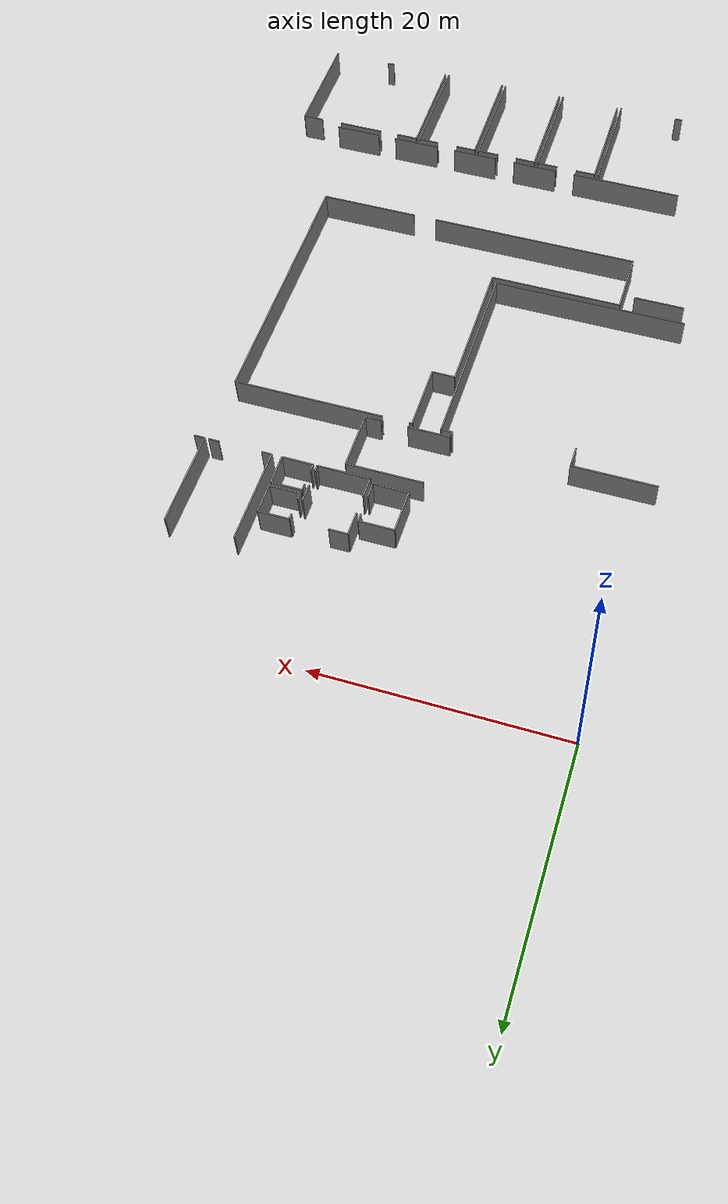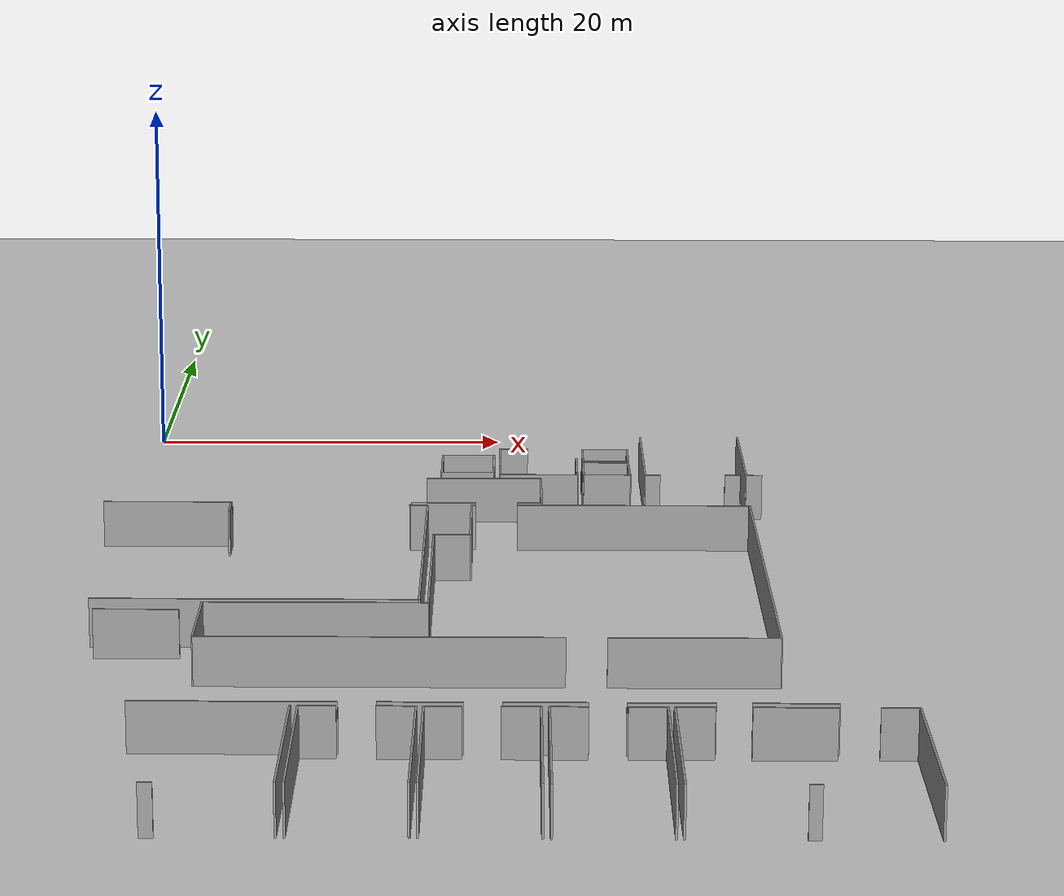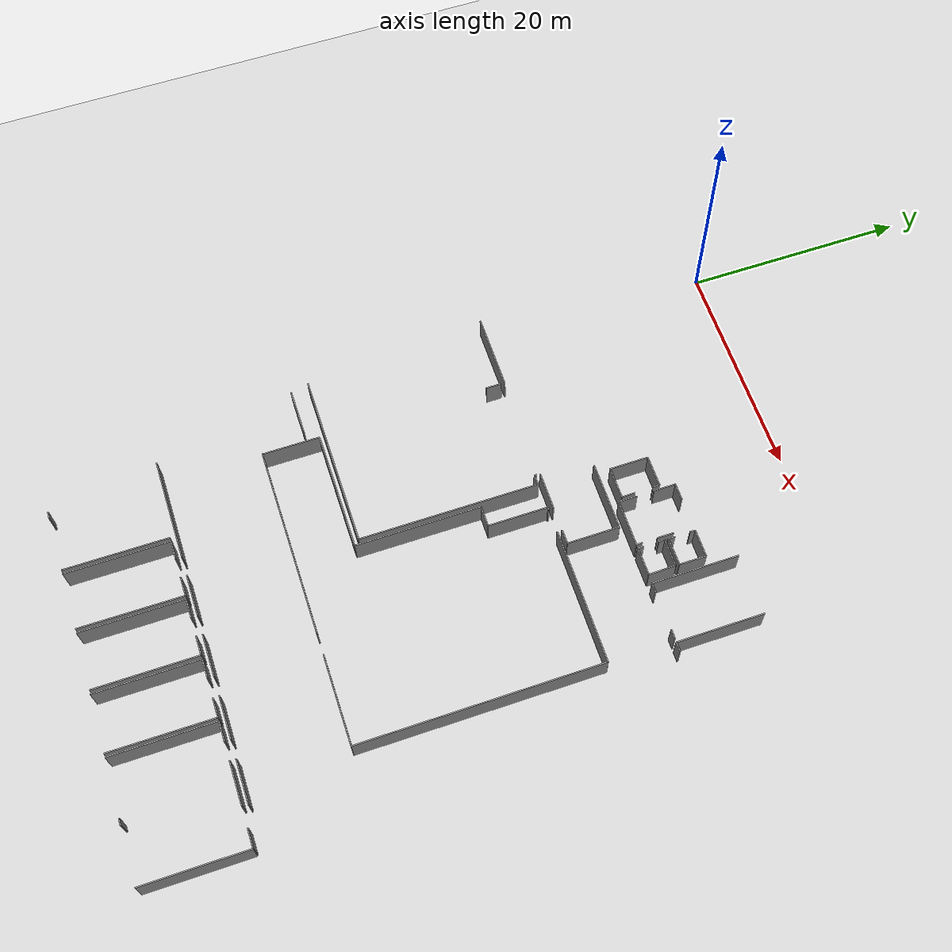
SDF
<sdf version="1.6">
 <world name="default">
  <model name="ground_plane">
   <static>1</static>
   <link name="link">
    <collision name="collision">
     <geometry><plane><normal>0 0 1</normal><size>100 100</size></plane></geometry>
     <surface><friction><ode><mu>100</mu><mu2>50</mu2></ode></friction></surface>
    </collision>
    <visual name="visual">
     <cast_shadows>0</cast_shadows>
     <geometry><plane><normal>0 0 1</normal><size>100 100</size></plane></geometry>
     <material>
      <script><uri>file://media/materials/scripts/gazebo.material</uri><name>Gazebo/Grey</name></script>
     </material>
    </visual>
   </link>
  </model>
  <model name="0510045905_A_40_1_103">
   <static>1</static>
   <link name="Wall_158">
    <collision name="Wall_158_Collision">
     <geometry><box><size>6.26891620083 0.1 2.5</size></box></geometry>
     <pose>3.13445810042 0 1.25 0 0 0</pose>
    </collision>
    <visual name="Wall_158_Visual">
     <pose>3.13445810042 0 1.25 0 0 0</pose>
     <geometry><box><size>6.26891620083 0.1 2.5</size></box></geometry>
     <material>
      <script><uri>file://media/materials/scripts/gazebo.material</uri><name>Gazebo/Grey</name></script>
      <ambient>1 1 1 1</ambient>
     </material>
    </visual>
    <pose>99.9729700577 -78.7939315876 0 0 0 0.0</pose>
   </link>
   <link name="Wall_159">
    <collision name="Wall_159_Collision">
     <geometry><box><size>4.72021471672 0.1 2.5</size></box></geometry>
     <pose>2.36010735836 0 1.25 0 0 0</pose>
    </collision>
    <visual name="Wall_159_Visual">
     <pose>2.36010735836 0 1.25 0 0 0</pose>
     <geometry><box><size>4.72021471672 0.1 2.5</size></box></geometry>
     <material>
      <script><uri>file://media/materials/scripts/gazebo.material</uri><name>Gazebo/Grey</name></script>
      <ambient>1 1 1 1</ambient>
     </material>
    </visual>
    <pose>106.241886259 -78.7939315876 0 0 0 -1.57079632679</pose>
   </link>
   <link name="Wall_160">
    <collision name="Wall_160_Collision">
     <geometry><box><size>1.30733552026 0.1 2.5</size></box></geometry>
     <pose>0.653667760131 0 1.25 0 0 0</pose>
    </collision>
    <visual name="Wall_160_Visual">
     <pose>0.653667760131 0 1.25 0 0 0</pose>
     <geometry><box><size>1.30733552026 0.1 2.5</size></box></geometry>
     <material>
      <script><uri>file://media/materials/scripts/gazebo.material</uri><name>Gazebo/Grey</name></script>
      <ambient>1 1 1 1</ambient>
     </material>
    </visual>
    <pose>106.241886259 -83.5141463043 0 0 0 3.14159265359</pose>
   </link>
   <link name="Wall_161">
    <collision name="Wall_161_Collision">
     <geometry><box><size>3.45221854914 0.1 2.5</size></box></geometry>
     <pose>1.72610927457 0 1.25 0 0 0</pose>
    </collision>
    <visual name="Wall_161_Visual">
     <pose>1.72610927457 0 1.25 0 0 0</pose>
     <geometry><box><size>3.45221854914 0.1 2.5</size></box></geometry>
     <material>
      <script><uri>file://media/materials/scripts/gazebo.material</uri><name>Gazebo/Grey</name></script>
      <ambient>1 1 1 1</ambient>
     </material>
    </visual>
    <pose>102.725455734 -83.5141463043 0 0 0 3.14159265359</pose>
   </link>
   <link name="Wall_162">
    <collision name="Wall_162_Collision">
     <geometry><box><size>6.92194945528 0.1 2.5</size></box></geometry>
     <pose>3.46097472764 0 1.25 0 0 0</pose>
    </collision>
    <visual name="Wall_162_Visual">
     <pose>3.46097472764 0 1.25 0 0 0</pose>
     <geometry><box><size>6.92194945528 0.1 2.5</size></box></geometry>
     <material>
      <script><uri>file://media/materials/scripts/gazebo.material</uri><name>Gazebo/Grey</name></script>
      <ambient>1 1 1 1</ambient>
     </material>
    </visual>
    <pose>89.6797649791 -83.5141463043 0 0 0 3.14159265359</pose>
   </link>
   <link name="Wall_252">
    <collision name="Wall_252_Collision">
     <geometry><box><size>4.29534970781 0.1 2.5</size></box></geometry>
     <pose>2.14767485391 0 1.25 0 0 0</pose>
    </collision>
    <visual name="Wall_252_Visual">
     <pose>2.14767485391 0 1.25 0 0 0</pose>
     <geometry><box><size>4.29534970781 0.1 2.5</size></box></geometry>
     <material>
      <script><uri>file://media/materials/scripts/gazebo.material</uri><name>Gazebo/Grey</name></script>
      <ambient>1 1 1 1</ambient>
     </material>
    </visual>
    <pose>108.283217959 -78.0013070817 0 0 0 3.14159265359</pose>
   </link>
   <link name="Wall_253">
    <collision name="Wall_253_Collision">
     <geometry><box><size>1.68321669004 0.1 2.5</size></box></geometry>
     <pose>0.841608345019 0 1.25 0 0 0</pose>
    </collision>
    <visual name="Wall_253_Visual">
     <pose>0.841608345019 0 1.25 0 0 0</pose>
     <geometry><box><size>1.68321669004 0.1 2.5</size></box></geometry>
     <material>
      <script><uri>file://media/materials/scripts/gazebo.material</uri><name>Gazebo/Grey</name></script>
      <ambient>1 1 1 1</ambient>
     </material>
    </visual>
    <pose>103.987868251 -78.0013070817 0 0 0 1.57079632679</pose>
   </link>
   <link name="Wall_254">
    <collision name="Wall_254_Collision">
     <geometry><box><size>1.97356649302 0.1 2.5</size></box></geometry>
     <pose>0.986783246512 0 1.25 0 0 0</pose>
    </collision>
    <visual name="Wall_254_Visual">
     <pose>0.986783246512 0 1.25 0 0 0</pose>
     <geometry><box><size>1.97356649302 0.1 2.5</size></box></geometry>
     <material>
      <script><uri>file://media/materials/scripts/gazebo.material</uri><name>Gazebo/Grey</name></script>
      <ambient>1 1 1 1</ambient>
     </material>
    </visual>
    <pose>103.987868251 -74.7508613415 0 0 0 1.57079632679</pose>
   </link>
   <link name="Wall_255">
    <collision name="Wall_255_Collision">
     <geometry><box><size>1.53804178854 0.1 2.5</size></box></geometry>
     <pose>0.769020894272 0 1.25 0 0 0</pose>
    </collision>
    <visual name="Wall_255_Visual">
     <pose>0.769020894272 0 1.25 0 0 0</pose>
     <geometry><box><size>1.53804178854 0.1 2.5</size></box></geometry>
     <material>
      <script><uri>file://media/materials/scripts/gazebo.material</uri><name>Gazebo/Grey</name></script>
      <ambient>1 1 1 1</ambient>
     </material>
    </visual>
    <pose>103.987868251 -72.7772948484 0 0 0 0.0</pose>
   </link>
   <link name="Wall_258">
    <collision name="Wall_258_Collision">
     <geometry><box><size>1.48880414713 0.1 2.5</size></box></geometry>
     <pose>0.744402073565 0 1.25 0 0 0</pose>
    </collision>
    <visual name="Wall_258_Visual">
     <pose>0.744402073565 0 1.25 0 0 0</pose>
     <geometry><box><size>1.48880414713 0.1 2.5</size></box></geometry>
     <material>
      <script><uri>file://media/materials/scripts/gazebo.material</uri><name>Gazebo/Grey</name></script>
      <ambient>1 1 1 1</ambient>
     </material>
    </visual>
    <pose>108.251238872 -74.6102548809 0 0 0 -1.57079632679</pose>
   </link>
   <link name="Wall_259">
    <collision name="Wall_259_Collision">
     <geometry><box><size>0.5402770891 0.1 2.5</size></box></geometry>
     <pose>0.27013854455 0 1.25 0 0 0</pose>
    </collision>
    <visual name="Wall_259_Visual">
     <pose>0.27013854455 0 1.25 0 0 0</pose>
     <geometry><box><size>0.5402770891 0.1 2.5</size></box></geometry>
     <material>
      <script><uri>file://media/materials/scripts/gazebo.material</uri><name>Gazebo/Grey</name></script>
      <ambient>1 1 1 1</ambient>
     </material>
    </visual>
    <pose>108.251238872 -77.4619772466 0 0 0 -1.51157155153</pose>
   </link>
   <link name="Wall_260">
    <collision name="Wall_260_Collision">
     <geometry><box><size>2.88141723191 0.1 2.5</size></box></geometry>
     <pose>1.44070861595 0 1.25 0 0 0</pose>
    </collision>
    <visual name="Wall_260_Visual">
     <pose>1.44070861595 0 1.25 0 0 0</pose>
     <geometry><box><size>2.88141723191 0.1 2.5</size></box></geometry>
     <material>
      <script><uri>file://media/materials/scripts/gazebo.material</uri><name>Gazebo/Grey</name></script>
      <ambient>1 1 1 1</ambient>
     </material>
    </visual>
    <pose>103.655894875 -77.5888783843 0 0 0 3.14159265359</pose>
   </link>
   <link name="Wall_261">
    <collision name="Wall_261_Collision">
     <geometry><box><size>3.49409592457 0.1 2.5</size></box></geometry>
     <pose>1.74704796228 0 1.25 0 0 0</pose>
    </collision>
    <visual name="Wall_261_Visual">
     <pose>1.74704796228 0 1.25 0 0 0</pose>
     <geometry><box><size>3.49409592457 0.1 2.5</size></box></geometry>
     <material>
      <script><uri>file://media/materials/scripts/gazebo.material</uri><name>Gazebo/Grey</name></script>
      <ambient>1 1 1 1</ambient>
     </material>
    </visual>
    <pose>100.774477643 -77.5888783843 0 0 0 1.57079632679</pose>
   </link>
   <link name="Wall_262">
    <collision name="Wall_262_Collision">
     <geometry><box><size>2.86618909539 0.1 2.5</size></box></geometry>
     <pose>1.43309454769 0 1.25 0 0 0</pose>
    </collision>
    <visual name="Wall_262_Visual">
     <pose>1.43309454769 0 1.25 0 0 0</pose>
     <geometry><box><size>2.86618909539 0.1 2.5</size></box></geometry>
     <material>
      <script><uri>file://media/materials/scripts/gazebo.material</uri><name>Gazebo/Grey</name></script>
      <ambient>1 1 1 1</ambient>
     </material>
    </visual>
    <pose>100.774477643 -74.0947824597 0 0 0 0.0</pose>
   </link>
   <link name="Wall_263">
    <collision name="Wall_263_Collision">
     <geometry><box><size>0.638820327024 0.1 2.5</size></box></geometry>
     <pose>0.319410163512 0 1.25 0 0 0</pose>
    </collision>
    <visual name="Wall_263_Visual">
     <pose>0.319410163512 0 1.25 0 0 0</pose>
     <geometry><box><size>0.638820327024 0.1 2.5</size></box></geometry>
     <material>
      <script><uri>file://media/materials/scripts/gazebo.material</uri><name>Gazebo/Grey</name></script>
      <ambient>1 1 1 1</ambient>
     </material>
    </visual>
    <pose>103.640666739 -74.0947824597 0 0 0 -1.57079632679</pose>
   </link>
   <link name="Wall_264">
    <collision name="Wall_264_Collision">
     <geometry><box><size>1.21174775288 0.1 2.5</size></box></geometry>
     <pose>0.605873876439 0 1.25 0 0 0</pose>
    </collision>
    <visual name="Wall_264_Visual">
     <pose>0.605873876439 0 1.25 0 0 0</pose>
     <geometry><box><size>1.21174775288 0.1 2.5</size></box></geometry>
     <material>
      <script><uri>file://media/materials/scripts/gazebo.material</uri><name>Gazebo/Grey</name></script>
      <ambient>1 1 1 1</ambient>
     </material>
    </visual>
    <pose>103.640666739 -76.3772263218 0 0 0 -1.55822891138</pose>
   </link>
   <link name="Wall_265">
    <collision name="Wall_265_Collision">
     <geometry><box><size>2.51391153722 0.1 2.5</size></box></geometry>
     <pose>1.25695576861 0 1.25 0 0 0</pose>
    </collision>
    <visual name="Wall_265_Visual">
     <pose>1.25695576861 0 1.25 0 0 0</pose>
     <geometry><box><size>2.51391153722 0.1 2.5</size></box></geometry>
     <material>
      <script><uri>file://media/materials/scripts/gazebo.material</uri><name>Gazebo/Grey</name></script>
      <ambient>1 1 1 1</ambient>
     </material>
    </visual>
    <pose>111.141031579 -75.2231873759 0 0 0 3.14159265359</pose>
   </link>
   <link name="Wall_266">
    <collision name="Wall_266_Collision">
     <geometry><box><size>0.589075081058 0.1 2.5</size></box></geometry>
     <pose>0.294537540529 0 1.25 0 0 0</pose>
    </collision>
    <visual name="Wall_266_Visual">
     <pose>0.294537540529 0 1.25 0 0 0</pose>
     <geometry><box><size>0.589075081058 0.1 2.5</size></box></geometry>
     <material>
      <script><uri>file://media/materials/scripts/gazebo.material</uri><name>Gazebo/Grey</name></script>
      <ambient>1 1 1 1</ambient>
     </material>
    </visual>
    <pose>108.627120042 -75.2231873759 0 0 0 1.57079632679</pose>
   </link>
   <link name="Wall_267">
    <collision name="Wall_267_Collision">
     <geometry><box><size>0.467503791171 0.1 2.5</size></box></geometry>
     <pose>0.233751895586 0 1.25 0 0 0</pose>
    </collision>
    <visual name="Wall_267_Visual">
     <pose>0.233751895586 0 1.25 0 0 0</pose>
     <geometry><box><size>0.467503791171 0.1 2.5</size></box></geometry>
     <material>
      <script><uri>file://media/materials/scripts/gazebo.material</uri><name>Gazebo/Grey</name></script>
      <ambient>1 1 1 1</ambient>
     </material>
    </visual>
    <pose>108.627120042 -73.2572349511 0 0 0 1.57079632679</pose>
   </link>
   <link name="Wall_268">
    <collision name="Wall_268_Collision">
     <geometry><box><size>2.52837826691 0.1 2.5</size></box></geometry>
     <pose>1.26418913346 0 1.25 0 0 0</pose>
    </collision>
    <visual name="Wall_268_Visual">
     <pose>1.26418913346 0 1.25 0 0 0</pose>
     <geometry><box><size>2.52837826691 0.1 2.5</size></box></geometry>
     <material>
      <script><uri>file://media/materials/scripts/gazebo.material</uri><name>Gazebo/Grey</name></script>
      <ambient>1 1 1 1</ambient>
     </material>
    </visual>
    <pose>108.627120042 -72.7897311599 0 0 0 0.0</pose>
   </link>
   <link name="Wall_269">
    <collision name="Wall_269_Collision">
     <geometry><box><size>2.43349921741 0.1 2.5</size></box></geometry>
     <pose>1.21674960871 0 1.25 0 0 0</pose>
    </collision>
    <visual name="Wall_269_Visual">
     <pose>1.21674960871 0 1.25 0 0 0</pose>
     <geometry><box><size>2.43349921741 0.1 2.5</size></box></geometry>
     <material>
      <script><uri>file://media/materials/scripts/gazebo.material</uri><name>Gazebo/Grey</name></script>
      <ambient>1 1 1 1</ambient>
     </material>
    </visual>
    <pose>111.155498309 -72.7897311599 0 0 0 -1.57674118792</pose>
   </link>
   <link name="Wall_270">
    <collision name="Wall_270_Collision">
     <geometry><box><size>2.55655031947 0.1 2.5</size></box></geometry>
     <pose>1.27827515974 0 1.25 0 0 0</pose>
    </collision>
    <visual name="Wall_270_Visual">
     <pose>1.27827515974 0 1.25 0 0 0</pose>
     <geometry><box><size>2.55655031947 0.1 2.5</size></box></geometry>
     <material>
      <script><uri>file://media/materials/scripts/gazebo.material</uri><name>Gazebo/Grey</name></script>
      <ambient>1 1 1 1</ambient>
     </material>
    </visual>
    <pose>111.167934621 -78.0040989067 0 0 0 3.14159265359</pose>
   </link>
   <link name="Wall_271">
    <collision name="Wall_271_Collision">
     <geometry><box><size>0.5268935236 0.1 2.5</size></box></geometry>
     <pose>0.2634467618 0 1.25 0 0 0</pose>
    </collision>
    <visual name="Wall_271_Visual">
     <pose>0.2634467618 0 1.25 0 0 0</pose>
     <geometry><box><size>0.5268935236 0.1 2.5</size></box></geometry>
     <material>
      <script><uri>file://media/materials/scripts/gazebo.material</uri><name>Gazebo/Grey</name></script>
      <ambient>1 1 1 1</ambient>
     </material>
    </visual>
    <pose>108.611384301 -78.0040989067 0 0 0 1.57079632679</pose>
   </link>
   <link name="Wall_272">
    <collision name="Wall_272_Collision">
     <geometry><box><size>0.562933446698 0.1 2.5</size></box></geometry>
     <pose>0.281466723349 0 1.25 0 0 0</pose>
    </collision>
    <visual name="Wall_272_Visual">
     <pose>0.281466723349 0 1.25 0 0 0</pose>
     <geometry><box><size>0.562933446698 0.1 2.5</size></box></geometry>
     <material>
      <script><uri>file://media/materials/scripts/gazebo.material</uri><name>Gazebo/Grey</name></script>
      <ambient>1 1 1 1</ambient>
     </material>
    </visual>
    <pose>108.611384301 -76.1099725259 0 0 0 1.57079632679</pose>
   </link>
   <link name="Wall_273">
    <collision name="Wall_273_Collision">
     <geometry><box><size>2.51543435087 0.1 2.5</size></box></geometry>
     <pose>1.25771717543 0 1.25 0 0 0</pose>
    </collision>
    <visual name="Wall_273_Visual">
     <pose>1.25771717543 0 1.25 0 0 0</pose>
     <geometry><box><size>2.51543435087 0.1 2.5</size></box></geometry>
     <material>
      <script><uri>file://media/materials/scripts/gazebo.material</uri><name>Gazebo/Grey</name></script>
      <ambient>1 1 1 1</ambient>
     </material>
    </visual>
    <pose>108.611384301 -75.5470390792 0 0 0 0.0</pose>
   </link>
   <link name="Wall_274">
    <collision name="Wall_274_Collision">
     <geometry><box><size>2.45740381683 0.1 2.5</size></box></geometry>
     <pose>1.22870190842 0 1.25 0 0 0</pose>
    </collision>
    <visual name="Wall_274_Visual">
     <pose>1.22870190842 0 1.25 0 0 0</pose>
     <geometry><box><size>2.45740381683 0.1 2.5</size></box></geometry>
     <material>
      <script><uri>file://media/materials/scripts/gazebo.material</uri><name>Gazebo/Grey</name></script>
      <ambient>1 1 1 1</ambient>
     </material>
    </visual>
    <pose>111.126818652 -75.5470390792 0 0 0 -1.55406407998</pose>
   </link>
   <link name="Wall_275">
    <collision name="Wall_275_Collision">
     <geometry><box><size>0.850999029206 0.1 2.5</size></box></geometry>
     <pose>0.425499514603 0 1.25 0 0 0</pose>
    </collision>
    <visual name="Wall_275_Visual">
     <pose>0.425499514603 0 1.25 0 0 0</pose>
     <geometry><box><size>0.850999029206 0.1 2.5</size></box></geometry>
     <material>
      <script><uri>file://media/materials/scripts/gazebo.material</uri><name>Gazebo/Grey</name></script>
      <ambient>1 1 1 1</ambient>
     </material>
    </visual>
    <pose>117.22924056 -78.0137433932 0 0 0 3.14159265359</pose>
   </link>
   <link name="Wall_276">
    <collision name="Wall_276_Collision">
     <geometry><box><size>0.834501881309 0.1 2.5</size></box></geometry>
     <pose>0.417250940655 0 1.25 0 0 0</pose>
    </collision>
    <visual name="Wall_276_Visual">
     <pose>0.417250940655 0 1.25 0 0 0</pose>
     <geometry><box><size>0.834501881309 0.1 2.5</size></box></geometry>
     <material>
      <script><uri>file://media/materials/scripts/gazebo.material</uri><name>Gazebo/Grey</name></script>
      <ambient>1 1 1 1</ambient>
     </material>
    </visual>
    <pose>112.823740665 -78.0137433932 0 0 0 3.14159265359</pose>
   </link>
   <link name="Wall_277">
    <collision name="Wall_277_Collision">
     <geometry><box><size>7.87700741737 0.1 2.5</size></box></geometry>
     <pose>3.93850370869 0 1.25 0 0 0</pose>
    </collision>
    <visual name="Wall_277_Visual">
     <pose>3.93850370869 0 1.25 0 0 0</pose>
     <geometry><box><size>7.87700741737 0.1 2.5</size></box></geometry>
     <material>
      <script><uri>file://media/materials/scripts/gazebo.material</uri><name>Gazebo/Grey</name></script>
      <ambient>1 1 1 1</ambient>
     </material>
    </visual>
    <pose>111.989238784 -78.0137433932 0 0 0 1.57079632679</pose>
   </link>
   <link name="Wall_284">
    <collision name="Wall_284_Collision">
     <geometry><box><size>0.870795606683 0.1 2.5</size></box></geometry>
     <pose>0.435397803341 0 1.25 0 0 0</pose>
    </collision>
    <visual name="Wall_284_Visual">
     <pose>0.435397803341 0 1.25 0 0 0</pose>
     <geometry><box><size>0.870795606683 0.1 2.5</size></box></geometry>
     <material>
      <script><uri>file://media/materials/scripts/gazebo.material</uri><name>Gazebo/Grey</name></script>
      <ambient>1 1 1 1</ambient>
     </material>
    </visual>
    <pose>118.424649277 -78.0170428228 0 0 0 3.14159265359</pose>
   </link>
   <link name="Wall_285">
    <collision name="Wall_285_Collision">
     <geometry><box><size>7.88386007881 0.1 2.5</size></box></geometry>
     <pose>3.9419300394 0 1.25 0 0 0</pose>
    </collision>
    <visual name="Wall_285_Visual">
     <pose>3.9419300394 0 1.25 0 0 0</pose>
     <geometry><box><size>7.88386007881 0.1 2.5</size></box></geometry>
     <material>
      <script><uri>file://media/materials/scripts/gazebo.material</uri><name>Gazebo/Grey</name></script>
      <ambient>1 1 1 1</ambient>
     </material>
    </visual>
    <pose>117.55385367 -78.0170428228 0 0 0 1.57079632679</pose>
   </link>
   <link name="Wall_358">
    <collision name="Wall_358_Collision">
     <geometry><box><size>16.1329416318 0.1 2.5</size></box></geometry>
     <pose>8.06647081591 0 1.25 0 0 0</pose>
    </collision>
    <visual name="Wall_358_Visual">
     <pose>8.06647081591 0 1.25 0 0 0</pose>
     <geometry><box><size>16.1329416318 0.1 2.5</size></box></geometry>
     <material>
      <script><uri>file://media/materials/scripts/gazebo.material</uri><name>Gazebo/Grey</name></script>
      <ambient>1 1 1 1</ambient>
     </material>
    </visual>
    <pose>100.146824616 -100.170935832 0 0 0 3.14159265359</pose>
   </link>
   <link name="Wall_362">
    <collision name="Wall_362_Collision">
     <geometry><box><size>1.40098855986 0.1 2.5</size></box></geometry>
     <pose>0.700494279931 0 1.25 0 0 0</pose>
    </collision>
    <visual name="Wall_362_Visual">
     <pose>0.700494279931 0 1.25 0 0 0</pose>
     <geometry><box><size>1.40098855986 0.1 2.5</size></box></geometry>
     <material>
      <script><uri>file://media/materials/scripts/gazebo.material</uri><name>Gazebo/Grey</name></script>
      <ambient>1 1 1 1</ambient>
     </material>
    </visual>
    <pose>89.6224056649 -85.2420321948 0 0 0 1.57079632679</pose>
   </link>
   <link name="Wall_363">
    <collision name="Wall_363_Collision">
     <geometry><box><size>0.182483835968 0.1 2.5</size></box></geometry>
     <pose>0.0912419179838 0 1.25 0 0 0</pose>
    </collision>
    <visual name="Wall_363_Visual">
     <pose>0.0912419179838 0 1.25 0 0 0</pose>
     <geometry><box><size>0.182483835968 0.1 2.5</size></box></geometry>
     <material>
      <script><uri>file://media/materials/scripts/gazebo.material</uri><name>Gazebo/Grey</name></script>
      <ambient>1 1 1 1</ambient>
     </material>
    </visual>
    <pose>99.2280603796 -83.841043635 0 0 0 -1.57079632679</pose>
   </link>
   <link name="Wall_364">
    <collision name="Wall_364_Collision">
     <geometry><box><size>0.930439141387 0.1 2.5</size></box></geometry>
     <pose>0.465219570693 0 1.25 0 0 0</pose>
    </collision>
    <visual name="Wall_364_Visual">
     <pose>0.465219570693 0 1.25 0 0 0</pose>
     <geometry><box><size>0.930439141387 0.1 2.5</size></box></geometry>
     <material>
      <script><uri>file://media/materials/scripts/gazebo.material</uri><name>Gazebo/Grey</name></script>
      <ambient>1 1 1 1</ambient>
     </material>
    </visual>
    <pose>99.2280603796 -84.0235274709 0 0 0 0.0</pose>
   </link>
   <link name="Wall_365">
    <collision name="Wall_365_Collision">
     <geometry><box><size>16.1474125821 0.1 2.5</size></box></geometry>
     <pose>8.07370629106 0 1.25 0 0 0</pose>
    </collision>
    <visual name="Wall_365_Visual">
     <pose>8.07370629106 0 1.25 0 0 0</pose>
     <geometry><box><size>16.1474125821 0.1 2.5</size></box></geometry>
     <material>
      <script><uri>file://media/materials/scripts/gazebo.material</uri><name>Gazebo/Grey</name></script>
      <ambient>1 1 1 1</ambient>
     </material>
    </visual>
    <pose>100.158499521 -84.0235274709 0 0 0 -1.57151934701</pose>
   </link>
   <link name="Wall_372">
    <collision name="Wall_372_Collision">
     <geometry><box><size>8.18994562286 0.1 2.5</size></box></geometry>
     <pose>4.09497281143 0 1.25 0 0 0</pose>
    </collision>
    <visual name="Wall_372_Visual">
     <pose>4.09497281143 0 1.25 0 0 0</pose>
     <geometry><box><size>8.18994562286 0.1 2.5</size></box></geometry>
     <material>
      <script><uri>file://media/materials/scripts/gazebo.material</uri><name>Gazebo/Grey</name></script>
      <ambient>1 1 1 1</ambient>
     </material>
    </visual>
    <pose>117.372892648 -105.834026002 0 0 0 3.14159265359</pose>
   </link>
   <link name="Wall_373">
    <collision name="Wall_373_Collision">
     <geometry><box><size>17.6204767676 0.1 2.5</size></box></geometry>
     <pose>8.81023838379 0 1.25 0 0 0</pose>
    </collision>
    <visual name="Wall_373_Visual">
     <pose>8.81023838379 0 1.25 0 0 0</pose>
     <geometry><box><size>17.6204767676 0.1 2.5</size></box></geometry>
     <material>
      <script><uri>file://media/materials/scripts/gazebo.material</uri><name>Gazebo/Grey</name></script>
      <ambient>1 1 1 1</ambient>
     </material>
    </visual>
    <pose>107.223847262 -105.834026002 0 0 0 3.14159265359</pose>
   </link>
   <link name="Wall_374">
    <collision name="Wall_374_Collision">
     <geometry><box><size>5.17477459185 0.1 2.5</size></box></geometry>
     <pose>2.58738729593 0 1.25 0 0 0</pose>
    </collision>
    <visual name="Wall_374_Visual">
     <pose>2.58738729593 0 1.25 0 0 0</pose>
     <geometry><box><size>5.17477459185 0.1 2.5</size></box></geometry>
     <material>
      <script><uri>file://media/materials/scripts/gazebo.material</uri><name>Gazebo/Grey</name></script>
      <ambient>1 1 1 1</ambient>
     </material>
    </visual>
    <pose>89.6033704942 -105.834026002 0 0 0 1.57079632679</pose>
   </link>
   <link name="Wall_375">
    <collision name="Wall_375_Collision">
     <geometry><box><size>11.0048666586 0.1 2.5</size></box></geometry>
     <pose>5.50243332931 0 1.25 0 0 0</pose>
    </collision>
    <visual name="Wall_375_Visual">
     <pose>5.50243332931 0 1.25 0 0 0</pose>
     <geometry><box><size>11.0048666586 0.1 2.5</size></box></geometry>
     <material>
      <script><uri>file://media/materials/scripts/gazebo.material</uri><name>Gazebo/Grey</name></script>
      <ambient>1 1 1 1</ambient>
     </material>
    </visual>
    <pose>89.6033704942 -100.65925141 0 0 0 0.0</pose>
   </link>
   <link name="Wall_376">
    <collision name="Wall_376_Collision">
     <geometry><box><size>11.2954702639 0.1 2.5</size></box></geometry>
     <pose>5.64773513195 0 1.25 0 0 0</pose>
    </collision>
    <visual name="Wall_376_Visual">
     <pose>5.64773513195 0 1.25 0 0 0</pose>
     <geometry><box><size>11.2954702639 0.1 2.5</size></box></geometry>
     <material>
      <script><uri>file://media/materials/scripts/gazebo.material</uri><name>Gazebo/Grey</name></script>
      <ambient>1 1 1 1</ambient>
     </material>
    </visual>
    <pose>100.608237153 -100.65925141 0 0 0 1.57079632679</pose>
   </link>
   <link name="Wall_377">
    <collision name="Wall_377_Collision">
     <geometry><box><size>1.89945622863 0.1 2.5</size></box></geometry>
     <pose>0.949728114313 0 1.25 0 0 0</pose>
    </collision>
    <visual name="Wall_377_Visual">
     <pose>0.949728114313 0 1.25 0 0 0</pose>
     <geometry><box><size>1.89945622863 0.1 2.5</size></box></geometry>
     <material>
      <script><uri>file://media/materials/scripts/gazebo.material</uri><name>Gazebo/Grey</name></script>
      <ambient>1 1 1 1</ambient>
     </material>
    </visual>
    <pose>100.608237153 -89.3637811463 0 0 0 0.0</pose>
   </link>
   <link name="Wall_378">
    <collision name="Wall_378_Collision">
     <geometry><box><size>5.42020139211 0.1 2.5</size></box></geometry>
     <pose>2.71010069605 0 1.25 0 0 0</pose>
    </collision>
    <visual name="Wall_378_Visual">
     <pose>2.71010069605 0 1.25 0 0 0</pose>
     <geometry><box><size>5.42020139211 0.1 2.5</size></box></geometry>
     <material>
      <script><uri>file://media/materials/scripts/gazebo.material</uri><name>Gazebo/Grey</name></script>
      <ambient>1 1 1 1</ambient>
     </material>
    </visual>
    <pose>102.507693381 -89.3637811463 0 0 0 1.57079632679</pose>
   </link>
   <link name="Wall_379">
    <collision name="Wall_379_Collision">
     <geometry><box><size>0.232229081934 0.1 2.5</size></box></geometry>
     <pose>0.116114540967 0 1.25 0 0 0</pose>
    </collision>
    <visual name="Wall_379_Visual">
     <pose>0.116114540967 0 1.25 0 0 0</pose>
     <geometry><box><size>0.232229081934 0.1 2.5</size></box></geometry>
     <material>
      <script><uri>file://media/materials/scripts/gazebo.material</uri><name>Gazebo/Grey</name></script>
      <ambient>1 1 1 1</ambient>
     </material>
    </visual>
    <pose>102.507693381 -83.9435797542 0 0 0 0.0</pose>
   </link>
   <link name="Wall_380">
    <collision name="Wall_380_Collision">
     <geometry><box><size>12.3992563593 0.1 2.5</size></box></geometry>
     <pose>6.19962817967 0 1.25 0 0 0</pose>
    </collision>
    <visual name="Wall_380_Visual">
     <pose>6.19962817967 0 1.25 0 0 0</pose>
     <geometry><box><size>12.3992563593 0.1 2.5</size></box></geometry>
     <material>
      <script><uri>file://media/materials/scripts/gazebo.material</uri><name>Gazebo/Grey</name></script>
      <ambient>1 1 1 1</ambient>
     </material>
    </visual>
    <pose>104.94698705 -83.9435797542 0 0 0 0.0</pose>
   </link>
   <link name="Wall_381">
    <collision name="Wall_381_Collision">
     <geometry><box><size>21.8904624691 0.1 2.5</size></box></geometry>
     <pose>10.9452312346 0 1.25 0 0 0</pose>
    </collision>
    <visual name="Wall_381_Visual">
     <pose>10.9452312346 0 1.25 0 0 0</pose>
     <geometry><box><size>21.8904624691 0.1 2.5</size></box></geometry>
     <material>
      <script><uri>file://media/materials/scripts/gazebo.material</uri><name>Gazebo/Grey</name></script>
      <ambient>1 1 1 1</ambient>
     </material>
    </visual>
    <pose>117.346243409 -83.9435797542 0 0 0 -1.56957893609</pose>
   </link>
   <link name="Wall_389">
    <collision name="Wall_389_Collision">
     <geometry><box><size>4.20093526138 0.1 2.5</size></box></geometry>
     <pose>2.10046763069 0 1.25 0 0 0</pose>
    </collision>
    <visual name="Wall_389_Visual">
     <pose>2.10046763069 0 1.25 0 0 0</pose>
     <geometry><box><size>4.20093526138 0.1 2.5</size></box></geometry>
     <material>
      <script><uri>file://media/materials/scripts/gazebo.material</uri><name>Gazebo/Grey</name></script>
      <ambient>1 1 1 1</ambient>
     </material>
    </visual>
    <pose>88.5929836361 -101.827249481 0 0 0 3.14159265359</pose>
   </link>
   <link name="Wall_405">
    <collision name="Wall_405_Collision">
     <geometry><box><size>3.89561112415 0.1 2.5</size></box></geometry>
     <pose>1.94780556208 0 1.25 0 0 0</pose>
    </collision>
    <visual name="Wall_405_Visual">
     <pose>1.94780556208 0 1.25 0 0 0</pose>
     <geometry><box><size>3.89561112415 0.1 2.5</size></box></geometry>
     <material>
      <script><uri>file://media/materials/scripts/gazebo.material</uri><name>Gazebo/Grey</name></script>
      <ambient>1 1 1 1</ambient>
     </material>
    </visual>
    <pose>119.291891652 -114.787408869 0 0 0 3.14159265359</pose>
   </link>
   <link name="Wall_406">
    <collision name="Wall_406_Collision">
     <geometry><box><size>3.97860446819 0.1 2.5</size></box></geometry>
     <pose>1.98930223409 0 1.25 0 0 0</pose>
    </collision>
    <visual name="Wall_406_Visual">
     <pose>1.98930223409 0 1.25 0 0 0</pose>
     <geometry><box><size>3.97860446819 0.1 2.5</size></box></geometry>
     <material>
      <script><uri>file://media/materials/scripts/gazebo.material</uri><name>Gazebo/Grey</name></script>
      <ambient>1 1 1 1</ambient>
     </material>
    </visual>
    <pose>113.779306231 -114.787408869 0 0 0 3.14159265359</pose>
   </link>
   <link name="Wall_407">
    <collision name="Wall_407_Collision">
     <geometry><box><size>3.86718526932 0.1 2.5</size></box></geometry>
     <pose>1.93359263466 0 1.25 0 0 0</pose>
    </collision>
    <visual name="Wall_407_Visual">
     <pose>1.93359263466 0 1.25 0 0 0</pose>
     <geometry><box><size>3.86718526932 0.1 2.5</size></box></geometry>
     <material>
      <script><uri>file://media/materials/scripts/gazebo.material</uri><name>Gazebo/Grey</name></script>
      <ambient>1 1 1 1</ambient>
     </material>
    </visual>
    <pose>108.127890967 -114.787408869 0 0 0 3.14159265359</pose>
   </link>
   <link name="Wall_408">
    <collision name="Wall_408_Collision">
     <geometry><box><size>3.8745455353 0.1 2.5</size></box></geometry>
     <pose>1.93727276765 0 1.25 0 0 0</pose>
    </collision>
    <visual name="Wall_408_Visual">
     <pose>1.93727276765 0 1.25 0 0 0</pose>
     <geometry><box><size>3.8745455353 0.1 2.5</size></box></geometry>
     <material>
      <script><uri>file://media/materials/scripts/gazebo.material</uri><name>Gazebo/Grey</name></script>
      <ambient>1 1 1 1</ambient>
     </material>
    </visual>
    <pose>102.522160111 -114.787408869 0 0 0 3.14159265359</pose>
   </link>
   <link name="Wall_409">
    <collision name="Wall_409_Collision">
     <geometry><box><size>9.47646935655 0.1 2.5</size></box></geometry>
     <pose>4.73823467827 0 1.25 0 0 0</pose>
    </collision>
    <visual name="Wall_409_Visual">
     <pose>4.73823467827 0 1.25 0 0 0</pose>
     <geometry><box><size>9.47646935655 0.1 2.5</size></box></geometry>
     <material>
      <script><uri>file://media/materials/scripts/gazebo.material</uri><name>Gazebo/Grey</name></script>
      <ambient>1 1 1 1</ambient>
     </material>
    </visual>
    <pose>96.9354644264 -114.787408869 0 0 0 3.14159265359</pose>
   </link>
   <link name="Wall_496">
    <collision name="Wall_496_Collision">
     <geometry><box><size>0.64338876798 0.1 2.5</size></box></geometry>
     <pose>0.32169438399 0 1.25 0 0 0</pose>
    </collision>
    <visual name="Wall_496_Visual">
     <pose>0.32169438399 0 1.25 0 0 0</pose>
     <geometry><box><size>0.64338876798 0.1 2.5</size></box></geometry>
     <material>
      <script><uri>file://media/materials/scripts/gazebo.material</uri><name>Gazebo/Grey</name></script>
      <ambient>1 1 1 1</ambient>
     </material>
    </visual>
    <pose>89.7048914044 -124.680113957 0 0 0 3.14159265359</pose>
   </link>
   <link name="Wall_500">
    <collision name="Wall_500_Collision">
     <geometry><box><size>9.36458119741 0.1 2.5</size></box></geometry>
     <pose>4.68229059871 0 1.25 0 0 0</pose>
    </collision>
    <visual name="Wall_500_Visual">
     <pose>4.68229059871 0 1.25 0 0 0</pose>
     <geometry><box><size>9.36458119741 0.1 2.5</size></box></geometry>
     <material>
      <script><uri>file://media/materials/scripts/gazebo.material</uri><name>Gazebo/Grey</name></script>
      <ambient>1 1 1 1</ambient>
     </material>
    </visual>
    <pose>94.829666948 -115.315571404 0 0 0 -1.57366918118</pose>
   </link>
   <link name="Wall_501">
    <collision name="Wall_501_Collision">
     <geometry><box><size>9.3267260141 0.1 2.5</size></box></geometry>
     <pose>4.66336300705 0 1.25 0 0 0</pose>
    </collision>
    <visual name="Wall_501_Visual">
     <pose>4.66336300705 0 1.25 0 0 0</pose>
     <geometry><box><size>9.3267260141 0.1 2.5</size></box></geometry>
     <material>
      <script><uri>file://media/materials/scripts/gazebo.material</uri><name>Gazebo/Grey</name></script>
      <ambient>1 1 1 1</ambient>
     </material>
    </visual>
    <pose>95.1814369016 -124.642297418 0 0 0 1.57079632679</pose>
   </link>
   <link name="Wall_502">
    <collision name="Wall_502_Collision">
     <geometry><box><size>1.70961212667 0.1 2.5</size></box></geometry>
     <pose>0.854806063336 0 1.25 0 0 0</pose>
    </collision>
    <visual name="Wall_502_Visual">
     <pose>0.854806063336 0 1.25 0 0 0</pose>
     <geometry><box><size>1.70961212667 0.1 2.5</size></box></geometry>
     <material>
      <script><uri>file://media/materials/scripts/gazebo.material</uri><name>Gazebo/Grey</name></script>
      <ambient>1 1 1 1</ambient>
     </material>
    </visual>
    <pose>95.1814369016 -115.315571404 0 0 0 0.0</pose>
   </link>
   <link name="Wall_503">
    <collision name="Wall_503_Collision">
     <geometry><box><size>1.78422999562 0.1 2.5</size></box></geometry>
     <pose>0.892114997811 0 1.25 0 0 0</pose>
    </collision>
    <visual name="Wall_503_Visual">
     <pose>0.892114997811 0 1.25 0 0 0</pose>
     <geometry><box><size>1.78422999562 0.1 2.5</size></box></geometry>
     <material>
      <script><uri>file://media/materials/scripts/gazebo.material</uri><name>Gazebo/Grey</name></script>
      <ambient>1 1 1 1</ambient>
     </material>
    </visual>
    <pose>98.6562438532 -115.315571404 0 0 0 0.0</pose>
   </link>
   <link name="Wall_504">
    <collision name="Wall_504_Collision">
     <geometry><box><size>9.32679177813 0.1 2.5</size></box></geometry>
     <pose>4.66339588907 0 1.25 0 0 0</pose>
    </collision>
    <visual name="Wall_504_Visual">
     <pose>4.66339588907 0 1.25 0 0 0</pose>
     <geometry><box><size>9.32679177813 0.1 2.5</size></box></geometry>
     <material>
      <script><uri>file://media/materials/scripts/gazebo.material</uri><name>Gazebo/Grey</name></script>
      <ambient>1 1 1 1</ambient>
     </material>
    </visual>
    <pose>100.440473849 -115.315571404 0 0 0 -1.57455161555</pose>
   </link>
   <link name="Wall_505">
    <collision name="Wall_505_Collision">
     <geometry><box><size>9.30185339112 0.1 2.5</size></box></geometry>
     <pose>4.65092669556 0 1.25 0 0 0</pose>
    </collision>
    <visual name="Wall_505_Visual">
     <pose>4.65092669556 0 1.25 0 0 0</pose>
     <geometry><box><size>9.30185339112 0.1 2.5</size></box></geometry>
     <material>
      <script><uri>file://media/materials/scripts/gazebo.material</uri><name>Gazebo/Grey</name></script>
      <ambient>1 1 1 1</ambient>
     </material>
    </visual>
    <pose>100.76635597 -124.640520802 0 0 0 1.57079632679</pose>
   </link>
   <link name="Wall_506">
    <collision name="Wall_506_Collision">
     <geometry><box><size>1.7124039517 0.1 2.5</size></box></geometry>
     <pose>0.856201975851 0 1.25 0 0 0</pose>
    </collision>
    <visual name="Wall_506_Visual">
     <pose>0.856201975851 0 1.25 0 0 0</pose>
     <geometry><box><size>1.7124039517 0.1 2.5</size></box></geometry>
     <material>
      <script><uri>file://media/materials/scripts/gazebo.material</uri><name>Gazebo/Grey</name></script>
      <ambient>1 1 1 1</ambient>
     </material>
    </visual>
    <pose>100.76635597 -115.338667411 0 0 0 0.0</pose>
   </link>
   <link name="Wall_507">
    <collision name="Wall_507_Collision">
     <geometry><box><size>1.80224995717 0.1 2.5</size></box></geometry>
     <pose>0.901124978585 0 1.25 0 0 0</pose>
    </collision>
    <visual name="Wall_507_Visual">
     <pose>0.901124978585 0 1.25 0 0 0</pose>
     <geometry><box><size>1.80224995717 0.1 2.5</size></box></geometry>
     <material>
      <script><uri>file://media/materials/scripts/gazebo.material</uri><name>Gazebo/Grey</name></script>
      <ambient>1 1 1 1</ambient>
     </material>
    </visual>
    <pose>104.195986117 -115.338667411 0 0 0 0.0</pose>
   </link>
   <link name="Wall_508">
    <collision name="Wall_508_Collision">
     <geometry><box><size>9.30185671859 0.1 2.5</size></box></geometry>
     <pose>4.6509283593 0 1.25 0 0 0</pose>
    </collision>
    <visual name="Wall_508_Visual">
     <pose>4.6509283593 0 1.25 0 0 0</pose>
     <geometry><box><size>9.30185671859 0.1 2.5</size></box></geometry>
     <material>
      <script><uri>file://media/materials/scripts/gazebo.material</uri><name>Gazebo/Grey</name></script>
      <ambient>1 1 1 1</ambient>
     </material>
    </visual>
    <pose>105.998236074 -115.338667411 0 0 0 -1.57164216561</pose>
   </link>
   <link name="Wall_509">
    <collision name="Wall_509_Collision">
     <geometry><box><size>9.34804540523 0.1 2.5</size></box></geometry>
     <pose>4.67402270261 0 1.25 0 0 0</pose>
    </collision>
    <visual name="Wall_509_Visual">
     <pose>4.67402270261 0 1.25 0 0 0</pose>
     <geometry><box><size>9.34804540523 0.1 2.5</size></box></geometry>
     <material>
      <script><uri>file://media/materials/scripts/gazebo.material</uri><name>Gazebo/Grey</name></script>
      <ambient>1 1 1 1</ambient>
     </material>
    </visual>
    <pose>106.361934735 -124.673007494 0 0 0 1.57079632679</pose>
   </link>
   <link name="Wall_510">
    <collision name="Wall_510_Collision">
     <geometry><box><size>1.74032220199 0.1 2.5</size></box></geometry>
     <pose>0.870161100994 0 1.25 0 0 0</pose>
    </collision>
    <visual name="Wall_510_Visual">
     <pose>0.870161100994 0 1.25 0 0 0</pose>
     <geometry><box><size>1.74032220199 0.1 2.5</size></box></geometry>
     <material>
      <script><uri>file://media/materials/scripts/gazebo.material</uri><name>Gazebo/Grey</name></script>
      <ambient>1 1 1 1</ambient>
     </material>
    </visual>
    <pose>106.361934735 -115.324962088 0 0 0 0.0</pose>
   </link>
   <link name="Wall_511">
    <collision name="Wall_511_Collision">
     <geometry><box><size>1.7690018591 0.1 2.5</size></box></geometry>
     <pose>0.884500929551 0 1.25 0 0 0</pose>
    </collision>
    <visual name="Wall_511_Visual">
     <pose>0.884500929551 0 1.25 0 0 0</pose>
     <geometry><box><size>1.7690018591 0.1 2.5</size></box></geometry>
     <material>
      <script><uri>file://media/materials/scripts/gazebo.material</uri><name>Gazebo/Grey</name></script>
      <ambient>1 1 1 1</ambient>
     </material>
    </visual>
    <pose>109.853238834 -115.324962088 0 0 0 0.0</pose>
   </link>
   <link name="Wall_512">
    <collision name="Wall_512_Collision">
     <geometry><box><size>9.34810543776 0.1 2.5</size></box></geometry>
     <pose>4.67405271888 0 1.25 0 0 0</pose>
    </collision>
    <visual name="Wall_512_Visual">
     <pose>4.67405271888 0 1.25 0 0 0</pose>
     <geometry><box><size>9.34810543776 0.1 2.5</size></box></geometry>
     <material>
      <script><uri>file://media/materials/scripts/gazebo.material</uri><name>Gazebo/Grey</name></script>
      <ambient>1 1 1 1</ambient>
     </material>
    </visual>
    <pose>111.622240693 -115.324962088 0 0 0 -1.57438015159</pose>
   </link>
   <link name="Wall_513">
    <collision name="Wall_513_Collision">
     <geometry><box><size>0.583999035551 0.1 2.5</size></box></geometry>
     <pose>0.291999517776 0 1.25 0 0 0</pose>
    </collision>
    <visual name="Wall_513_Visual">
     <pose>0.291999517776 0 1.25 0 0 0</pose>
     <geometry><box><size>0.583999035551 0.1 2.5</size></box></geometry>
     <material>
      <script><uri>file://media/materials/scripts/gazebo.material</uri><name>Gazebo/Grey</name></script>
      <ambient>1 1 1 1</ambient>
     </material>
    </visual>
    <pose>117.663242451 -124.656510346 0 0 0 3.14159265359</pose>
   </link>
   <link name="Wall_514">
    <collision name="Wall_514_Collision">
     <geometry><box><size>9.33916232559 0.1 2.5</size></box></geometry>
     <pose>4.6695811628 0 1.25 0 0 0</pose>
    </collision>
    <visual name="Wall_514_Visual">
     <pose>4.6695811628 0 1.25 0 0 0</pose>
     <geometry><box><size>9.33916232559 0.1 2.5</size></box></geometry>
     <material>
      <script><uri>file://media/materials/scripts/gazebo.material</uri><name>Gazebo/Grey</name></script>
      <ambient>1 1 1 1</ambient>
     </material>
    </visual>
    <pose>111.922488785 -124.656510346 0 0 0 1.57079632679</pose>
   </link>
   <link name="Wall_515">
    <collision name="Wall_515_Collision">
     <geometry><box><size>1.79539729574 0.1 2.5</size></box></geometry>
     <pose>0.897698647868 0 1.25 0 0 0</pose>
    </collision>
    <visual name="Wall_515_Visual">
     <pose>0.897698647868 0 1.25 0 0 0</pose>
     <geometry><box><size>1.79539729574 0.1 2.5</size></box></geometry>
     <material>
      <script><uri>file://media/materials/scripts/gazebo.material</uri><name>Gazebo/Grey</name></script>
      <ambient>1 1 1 1</ambient>
     </material>
    </visual>
    <pose>111.922488785 -115.31734802 0 0 0 0.0</pose>
   </link>
   <link name="Wall_516">
    <collision name="Wall_516_Collision">
     <geometry><box><size>3.81820143018 0.1 2.5</size></box></geometry>
     <pose>1.90910071509 0 1.25 0 0 0</pose>
    </collision>
    <visual name="Wall_516_Visual">
     <pose>1.90910071509 0 1.25 0 0 0</pose>
     <geometry><box><size>3.81820143018 0.1 2.5</size></box></geometry>
     <material>
      <script><uri>file://media/materials/scripts/gazebo.material</uri><name>Gazebo/Grey</name></script>
      <ambient>1 1 1 1</ambient>
     </material>
    </visual>
    <pose>115.374961137 -115.31734802 0 0 0 0.0</pose>
   </link>
   <link name="Wall_517">
    <collision name="Wall_517_Collision">
     <geometry><box><size>1.74362163157 0.1 2.5</size></box></geometry>
     <pose>0.871810815784 0 1.25 0 0 0</pose>
    </collision>
    <visual name="Wall_517_Visual">
     <pose>0.871810815784 0 1.25 0 0 0</pose>
     <geometry><box><size>1.74362163157 0.1 2.5</size></box></geometry>
     <material>
      <script><uri>file://media/materials/scripts/gazebo.material</uri><name>Gazebo/Grey</name></script>
      <ambient>1 1 1 1</ambient>
     </material>
    </visual>
    <pose>121.046934386 -115.31734802 0 0 0 0.0</pose>
   </link>
   <link name="Wall_518">
    <collision name="Wall_518_Collision">
     <geometry><box><size>9.3391855145 0.1 2.5</size></box></geometry>
     <pose>4.66959275725 0 1.25 0 0 0</pose>
    </collision>
    <visual name="Wall_518_Visual">
     <pose>4.66959275725 0 1.25 0 0 0</pose>
     <geometry><box><size>9.3391855145 0.1 2.5</size></box></geometry>
     <material>
      <script><uri>file://media/materials/scripts/gazebo.material</uri><name>Gazebo/Grey</name></script>
      <ambient>1 1 1 1</ambient>
     </material>
    </visual>
    <pose>122.790556017 -115.31734802 0 0 0 -1.57302476564</pose>
   </link>
   <pose>-83.8 62.4001624335 0 0 0 0</pose>
  </model>
 </world>
</sdf>
